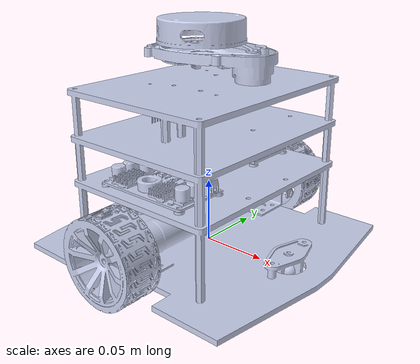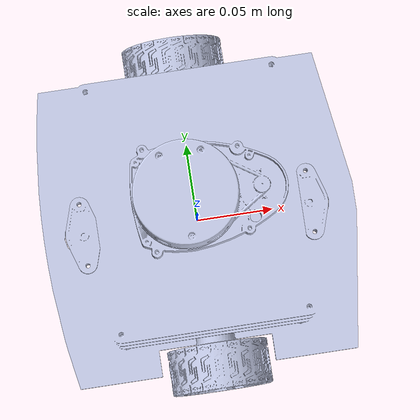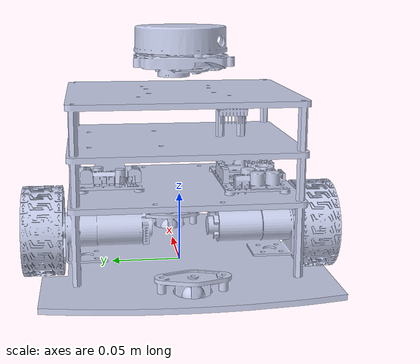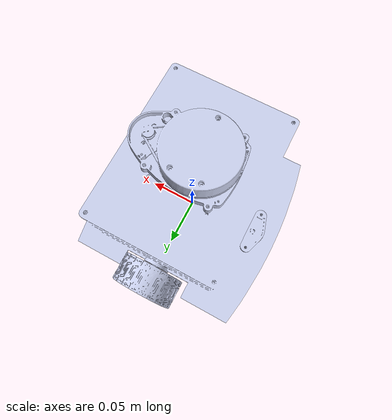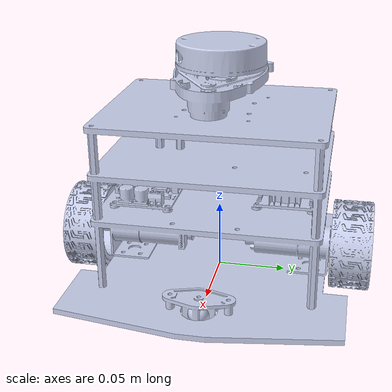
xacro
<?xml version="1.0" encoding="utf-8"?>

<robot xmlns:xacro="http://www.ros.org/wiki/xacro" name="assem1_v4">

  <xacro:include filename="$(find assem1_v4)/urdf/robot.gazebo.xml"/>

  <link
    name="base_link">
    <inertial>
      <origin
        xyz="-0.000299600199777236 -0.000764061882273962 0.0537544977182631"
        rpy="0 0 0" />
      <mass
        value="0.474902049786311" />
      <inertia
        ixx="0.000923329864477317"
        ixy="-4.432210879482E-08"
        ixz="-2.49993493078715E-07"
        iyy="0.000799649174928032"
        iyz="-3.89653228401918E-09"
        izz="0.00171301458246196" />
    </inertial>
    <visual>
      <origin
        xyz="0 0 0"
        rpy="0 0 0" />
      <geometry>
        <mesh
          filename="package://assem1_v4/meshes/base_link.STL" />
      </geometry>
      <material
        name="">
        <color
          rgba="0.792156862745098 0.819607843137255 0.933333333333333 1" />
      </material>
    </visual>
    <collision>
      <origin
        xyz="0 0 0"
        rpy="0 0 0" />
      <geometry>
        <mesh
          filename="package://assem1_v4/meshes/base_link.STL" />
      </geometry>
    </collision>
  </link>
  <link
    name="R_wheel_link">
    <inertial>
      <origin
        xyz="0.000423204973116017 0.00581998639716252 -0.000740394904887015"
        rpy="0 0 0" />
      <mass
        value="0.0419551495559627" />
      <inertia
        ixx="1.83817688523008E-05"
        ixy="-2.03879953368318E-10"
        ixz="-1.49376909438339E-08"
        iyy="3.09193291489253E-05"
        iyz="3.7910497666528E-10"
        izz="1.83999795456458E-05" />
    </inertial>
    <visual>
      <origin
        xyz="0 0 0"
        rpy="0 0 0" />
      <geometry>
        <mesh
          filename="package://assem1_v4/meshes/R_wheel_link.STL" />
      </geometry>
      <material
        name="">
        <color
          rgba="0.792156862745098 0.819607843137255 0.933333333333333 1" />
      </material>
    </visual>
    <collision>
      <origin
        xyz="0 0 0"
        rpy="0 0 0" />
      <geometry>
        <mesh
          filename="package://assem1_v4/meshes/R_wheel_link.STL" />
      </geometry>
    </collision>
  </link>
  <joint
    name="Rwheel_joint"
    type="continuous">
    <origin
      xyz="-0.000404391754331336 -0.105251106428109 0.0250000000000001"
      rpy="0 0 0" />
    <parent
      link="base_link" />
    <child
      link="R_wheel_link" />
    <axis
      xyz="0 -1 0" />
  </joint>
  <link
    name="L_wheel_link">
    <inertial>
      <origin
        xyz="-0.000410324113401153 -0.00581998639719117 0.000747610317289837"
        rpy="0 0 0" />
      <mass
        value="0.0419551495558706" />
      <inertia
        ixx="1.83817046427243E-05"
        ixy="-2.16791577850274E-10"
        ixz="-1.48983618867278E-08"
        iyy="3.09193291489218E-05"
        iyz="3.71872305864664E-10"
        izz="1.84000437551973E-05" />
    </inertial>
    <visual>
      <origin
        xyz="0 0 0"
        rpy="0 0 0" />
      <geometry>
        <mesh
          filename="package://assem1_v4/meshes/L_wheel_link.STL" />
      </geometry>
      <material
        name="">
        <color
          rgba="0.792156862745098 0.819607843137255 0.933333333333333 1" />
      </material>
    </visual>
    <collision>
      <origin
        xyz="0 0 0"
        rpy="0 0 0" />
      <geometry>
        <mesh
          filename="package://assem1_v4/meshes/L_wheel_link.STL" />
      </geometry>
    </collision>
  </link>
  <joint
    name="Lwheel_joint"
    type="continuous">
    <origin
      xyz="-0.000404391754331338 0.105251106428109 0.0250000000000008"
      rpy="0 0 0" />
    <parent
      link="base_link" />
    <child
      link="L_wheel_link" />
    <axis
      xyz="0 -1 0" />
  </joint>
  <link
    name="Ball_front_link">
    <inertial>
      <origin
        xyz="4.57966997657877E-16 -3.53026803513214E-06 0.00545097611897468"
        rpy="0 0 0" />
      <mass
        value="0.00525183168276763" />
      <inertia
        ixx="4.83733544502167E-07"
        ixy="6.80369534809298E-16"
        ixz="6.47002468094357E-23"
        iyy="2.1847360696902E-07"
        iyz="2.5529250701522E-10"
        izz="5.29149897055848E-07" />
    </inertial>
    <visual>
      <origin
        xyz="0 0 0"
        rpy="0 0 0" />
      <geometry>
        <mesh
          filename="package://assem1_v4/meshes/Ball_front_link.STL" />
      </geometry>
      <material
        name="">
        <color
          rgba="0.792156862745098 0.819607843137255 0.933333333333333 1" />
      </material>
    </visual>
    <collision>
      <origin
        xyz="0 0 0"
        rpy="0 0 0" />
      <geometry>
        <mesh
          filename="package://assem1_v4/meshes/Ball_front_link.STL" />
      </geometry>
    </collision>
  </link>
  <joint
    name="Ballfront_joint"
    type="fixed">
    <origin
      xyz="0.074595608245668 -0.000183494055149488 0.00159999999999952"
      rpy="0 0 0" />
    <parent
      link="base_link" />
    <child
      link="Ball_front_link" />
    <axis
      xyz="0 0 0" />
  </joint>
  <link
    name="Ball_back_link">
    <inertial>
      <origin
        xyz="4.44089209850063E-16 -3.53026803512693E-06 0.00545097611897468"
        rpy="0 0 0" />
      <mass
        value="0.00525183168276762" />
      <inertia
        ixx="4.83733544502167E-07"
        ixy="6.80369462261404E-16"
        ixz="3.87749648050902E-23"
        iyy="2.18473606969021E-07"
        iyz="2.55292507015327E-10"
        izz="5.29149897055847E-07" />
    </inertial>
    <visual>
      <origin
        xyz="0 0 0"
        rpy="0 0 0" />
      <geometry>
        <mesh
          filename="package://assem1_v4/meshes/Ball_back_link.STL" />
      </geometry>
      <material
        name="">
        <color
          rgba="0.792156862745098 0.819607843137255 0.933333333333333 1" />
      </material>
    </visual>
    <collision>
      <origin
        xyz="0 0 0"
        rpy="0 0 0" />
      <geometry>
        <mesh
          filename="package://assem1_v4/meshes/Ball_back_link.STL" />
      </geometry>
    </collision>
  </link>
  <joint
    name="Ballback_joint"
    type="fixed">
    <origin
      xyz="-0.0754043917543321 -0.000183494055149433 0.00159999999999952"
      rpy="0 0 0" />
    <parent
      link="base_link" />
    <child
      link="Ball_back_link" />
    <axis
      xyz="0 0 0" />
  </joint>
  <link
    name="Lidar_link">
    <inertial>
      <origin
        xyz="0.0148415079751369 0.000325148864721077 -0.0211536208141642"
        rpy="0 0 0" />
      <mass
        value="0.0312409126861326" />
      <inertia
        ixx="8.87771234373125E-06"
        ixy="-1.31314585063882E-07"
        ixz="1.13309561626867E-07"
        iyy="1.4493553041838E-05"
        iyz="3.3673144047221E-08"
        izz="2.25289098075929E-05" />
    </inertial>
    <visual>
      <origin
        xyz="0 0 0"
        rpy="0 0 0" />
      <geometry>
        <mesh
          filename="package://assem1_v4/meshes/Lidar_link.STL" />
      </geometry>
      <material
        name="">
        <color
          rgba="0.792156862745098 0.819607843137255 0.933333333333333 1" />
      </material>
    </visual>
    <collision>
      <origin
        xyz="0 0 0"
        rpy="0 0 0" />
      <geometry>
        <mesh
          filename="package://assem1_v4/meshes/Lidar_link.STL" />
      </geometry>
    </collision>
  </link>
  <joint
    name="Lidar_joint"
    type="continuous">
    <origin
      xyz="-0.00686404999738738 -0.00013029331516768 0.1721"
      rpy="0 0 0" />
    <parent
      link="base_link" />
    <child
      link="Lidar_link" />
    <axis
      xyz="0 0 1" />
  </joint>
  <link
    name="imu_link">
    <inertial>
      <origin
        xyz="-0.00238812545770593 -0.000157206619356118 -0.00229065136771811"
        rpy="0 0 0" />
      <mass
        value="0.000673876938953716" />
      <inertia
        ixx="2.19297264797498E-08"
        ixy="-2.82977769065327E-14"
        ixz="-2.6953030967514E-14"
        iyy="9.33459184266938E-09"
        iyz="-1.16326526466434E-14"
        izz="2.98834978397075E-08" />
    </inertial>
    <visual>
      <origin
        xyz="0 0 0"
        rpy="0 0 0" />
      <geometry>
        <mesh
          filename="package://assem1_v4/meshes/imu_link.STL" />
      </geometry>
      <material
        name="">
        <color
          rgba="0.792156862745098 0.819607843137255 0.933333333333333 1" />
      </material>
    </visual>
    <collision>
      <origin
        xyz="0 0 0"
        rpy="0 0 0" />
      <geometry>
        <mesh
          filename="package://assem1_v4/meshes/imu_link.STL" />
      </geometry>
    </collision>
  </link>
  <joint
    name="imu_joint"
    type="fixed">
    <origin
      xyz="-0.00494016789724259 -0.0369909162737564 0.114519999987995"
      rpy="0 0 0" />
    <parent
      link="base_link" />
    <child
      link="imu_link" />
    <axis
      xyz="0 0 0" />
  </joint>
</robot>
